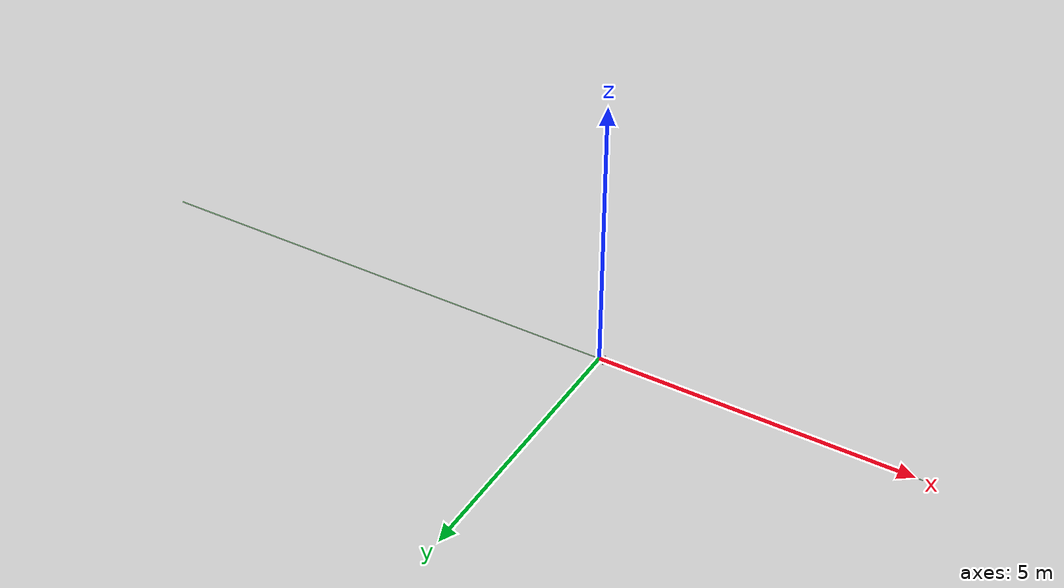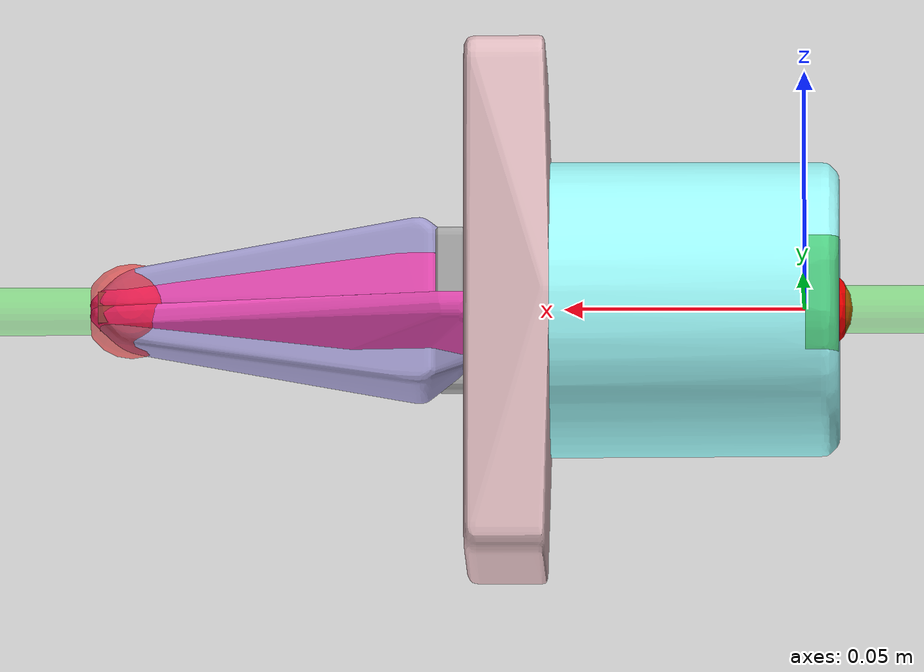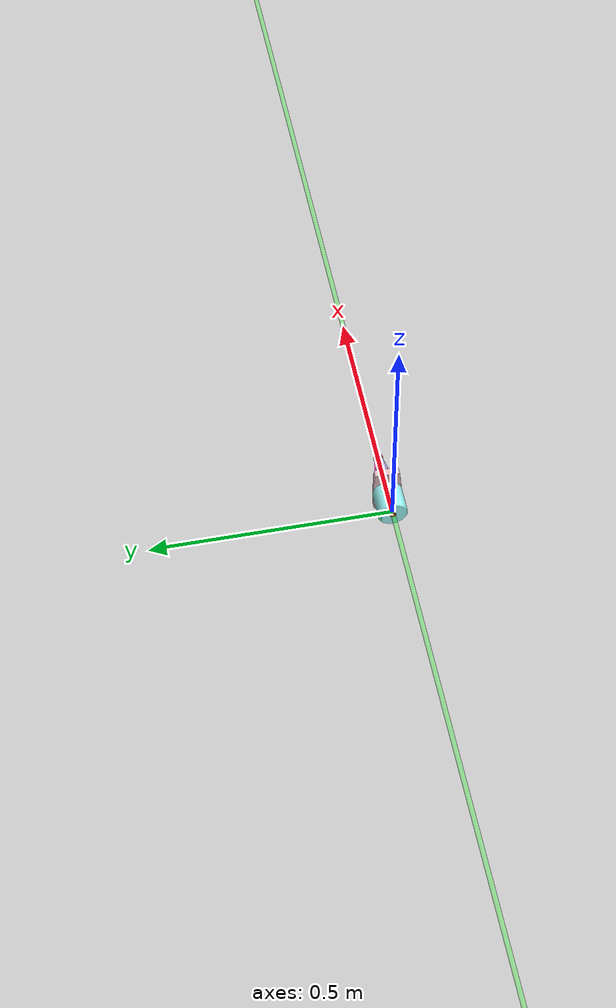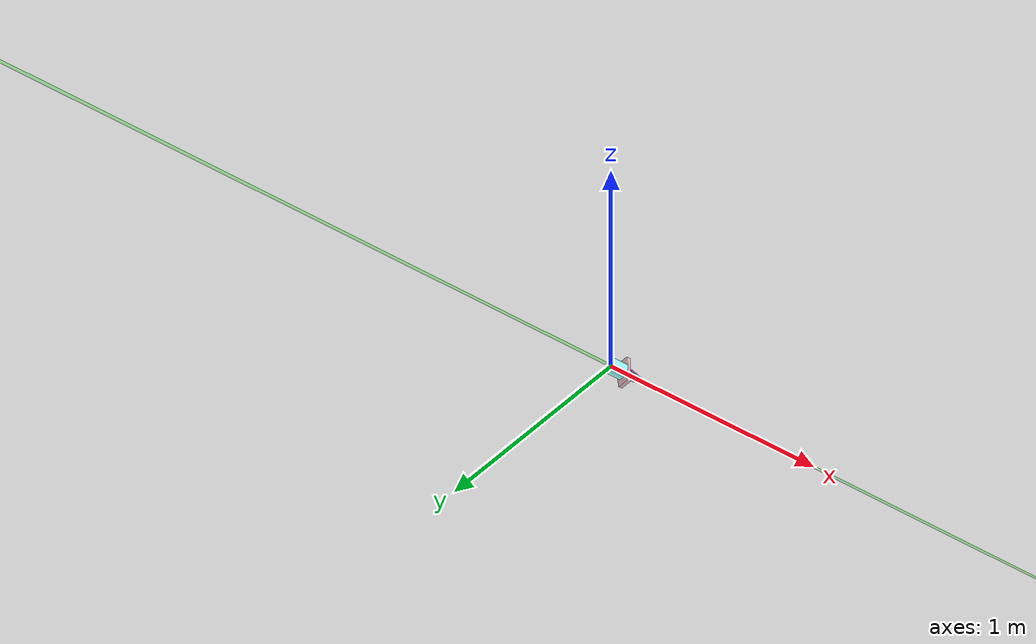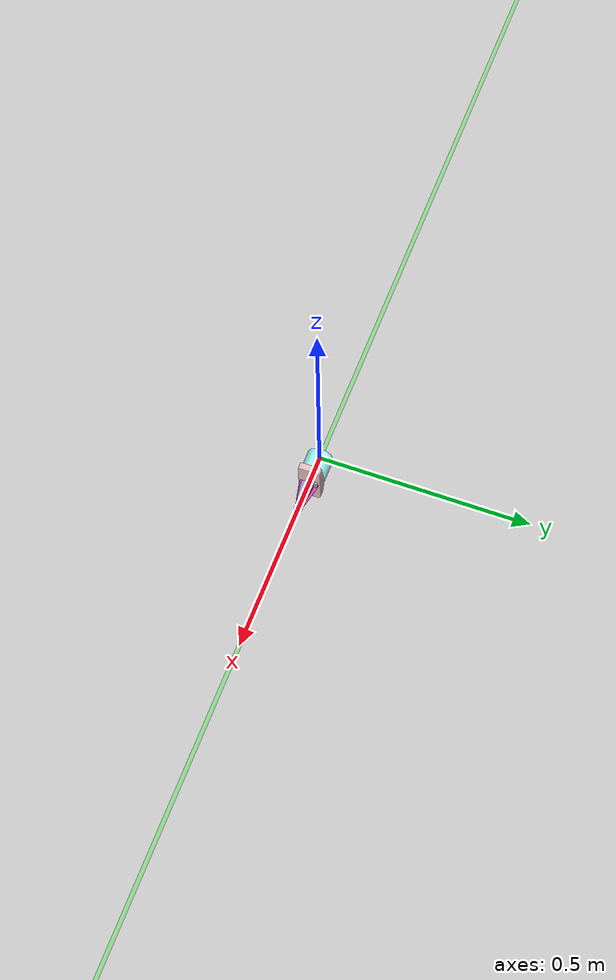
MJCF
<mujoco model="arx_gripper">
	<asset>

		<material name="black" specular="0.5" shininess="0.25" rgba="0.010000 0.010000 0.010000 1.000000"/>
		<material name="grey" specular="0.5" shininess="0.25" rgba="0.64706 0.64706 0.64706 1.000000"/>

		<!-- gripper link -->
		<mesh name="gripper_link" file="gripper_link/gripper_link.obj"/>
		<mesh name="gripper_link_collision_0" file="gripper_link/gripper_link_collision_0.obj"/>
		<mesh name="gripper_link_collision_1" file="gripper_link/gripper_link_collision_1.obj"/>
		<mesh name="gripper_link_collision_2" file="gripper_link/gripper_link_collision_2.obj"/>

		<!-- finger 1 -->
		<mesh name="finger" file="finger/finger.obj"/>
		<mesh name="finger_collision_1" file="finger/finger_collision_1.obj"/>
		<mesh name="finger_collision_2" file="finger/finger_collision_2.obj"/>

		<!-- finger 2 -->
		<mesh name="finger_1" file="finger/finger.obj" scale="1 -1 -1"/>
		<mesh name="finger_1_collision_0" file="finger/finger_collision_0.obj" scale="1 -1 -1"/>
		<mesh name="finger_1_collision_1" file="finger/finger_collision_1.obj" scale="1 -1 -1"/>
		<mesh name="finger_1_collision_2" file="finger/finger_collision_2.obj" scale="1 -1 -1"/>

	</asset>
	<default>
		<default class="visual">
			<geom group="1" type="mesh" contype="0" conaffinity="0"/>
		</default>
		<default class="collision">
			<geom group="0" type="mesh"/>
		</default>
	</default>
	<actuator>
		<position ctrllimited="true" ctrlrange="0 0.044" joint="gripper_joint" kp="1000" name="gripper_finger_joint1"
		          forcelimited="true" forcerange="-20 20"/>
	</actuator>
	<worldbody>
		<body name="right_gripper" quat="0.7071 0.7071 0 0">
			<site name="ft_frame" size="0.01 0.01 0.01" rgba="1 0 0 1" type="sphere" class="visual"/>
			<body name="gripper_base" pos="0.07 0 0">
				<inertial pos="-0.0311072323899603 1.17979991887118E-08 7.93394685505433E-08" mass="0.604"
				          diaginertia="0.000175881544189539 9.86379407701341E-05 0.000165121280580029"/>
				<geom material="black" mesh="gripper_link" class="visual"/>
				<geom mesh="gripper_link_collision_0"
				      rgba="0.8862490586574084 0.7435093360566776 0.7607178856117596 1" class="collision"/>
				<geom mesh="gripper_link_collision_1"
				      rgba="0.6260033284114311 0.9914132560713189 0.9925368790645307 1" class="collision"/>
				<geom mesh="gripper_link_collision_2"
				      rgba="0.3131910709239759 0.8143386607477612 0.5206038597699393 1" class="collision"/>

				<!-- This site was added for visualization. -->
				<body name="eef" pos="0.07 0 0">
					<site name="grip_site" size="0.01 0.01 0.01" rgba="1 0 0 0.5" type="sphere" class="visual"/>
					<site name="ee_x" pos="0.1 0 0" size="0.005 .1" quat="0.707105  0 0.707108 0 " rgba="1 0 0 0" type="cylinder"
					      class="visual"/>
					<site name="ee_y" pos="0 0.1 0" size="0.005 .1" quat="0.707105 0.707108 0 0" rgba="0 1 0 0" type="cylinder"
					      class="visual"/>
					<site name="ee_z" pos="0 0 0.1" size="0.005 .1" quat="1 0 0 0" rgba="0 0 1 0" type="cylinder" class="visual"/>
					<!-- This site was added for visualization. -->
					<body name="line_front">
						<site name="grip_site_cylinder" size="0.005 5" rgba="0 1 0 0.3" quat="0 0.7071 0 0.7071"
						      type="cylinder" class="visual"/>
					</body>
				</body>
				<body name="finger1" pos="0.03689 0.013453 0.00012059">
					<inertial pos="-0.0195896 -0.0151137 0.00542254" quat="0.0737604 0.710766 -0.00936884 0.699488"
					          mass="0.027" diaginertia="6.49151e-06 5.75205e-06 2.35775e-06"/>
					<joint name="gripper_joint" axis="0 1 0" type="slide" range="0 0.05"
					       damping="100" armature="1.0" frictionloss="1.0"/>
					<geom material="grey" mesh="finger" class="visual"/>
					<geom mesh="finger_collision_1" rgba="0.6319617394132765 0.6094764851034856 0.8071638933016702 1"
					      class="collision"/>
					<geom mesh="finger_collision_2" rgba="0.9335377064754602 0.2992266374488698 0.7218747227400863 1"
					      class="collision"/>
					<geom size="0.008 0.0018 0.006" pos="0.032 -0.012 0" type="box" class="collision" solref="0.01 0.5"
					      friction="2 0.05 0.0001" conaffinity="1" contype="1" name="finger1_pad_collision"/>
				</body>
				<body name="finger2" pos="0.03689 -0.013453 -0.00012059">
					<inertial pos="-0.0195896 0.0151137 -0.00542254" quat="-0.00936875 0.699488 0.0737603 0.710766"
					          mass="0.027" diaginertia="6.49151e-06 5.75205e-06 2.35775e-06"/>
					<joint name="gripper_joint2" axis="0 -1 0" type="slide" range="0 0.05"
					       damping="100" armature="1.0" frictionloss="1.0"/>
					<geom material="grey" mesh="finger_1" class="visual"/>
					<geom mesh="finger_1_collision_1" rgba="0.6319617394132765 0.6094764851034856 0.8071638933016702 1"
					      class="collision"/>
					<geom mesh="finger_1_collision_2" rgba="0.9335377064754602 0.2992266374488698 0.7218747227400863 1"
					      class="collision"/>
					<geom size="0.008 0.0018 0.006" pos="0.032 0.012 0" type="box" class="collision" solref="0.01 0.5"
					      friction="2 0.05 0.0001" conaffinity="1" contype="1" name="finger2_pad_collision"/>
				</body>
			</body>
		</body>
	</worldbody>

	<contact>
		<exclude body1="gripper_base" body2="finger1"/>
		<exclude body1="gripper_base" body2="finger2"/>
	</contact>

	<equality>
		<joint joint1="gripper_joint" joint2="gripper_joint2" polycoef="0 1 0 0 0"
		       solimp="0.95 0.99 0.001 " solref="0.001 1"/>
	</equality>

	<sensor>
		<force name="force_ee" site="ft_frame"/>
		<torque name="torque_ee" site="ft_frame"/>
	</sensor>
</mujoco>
